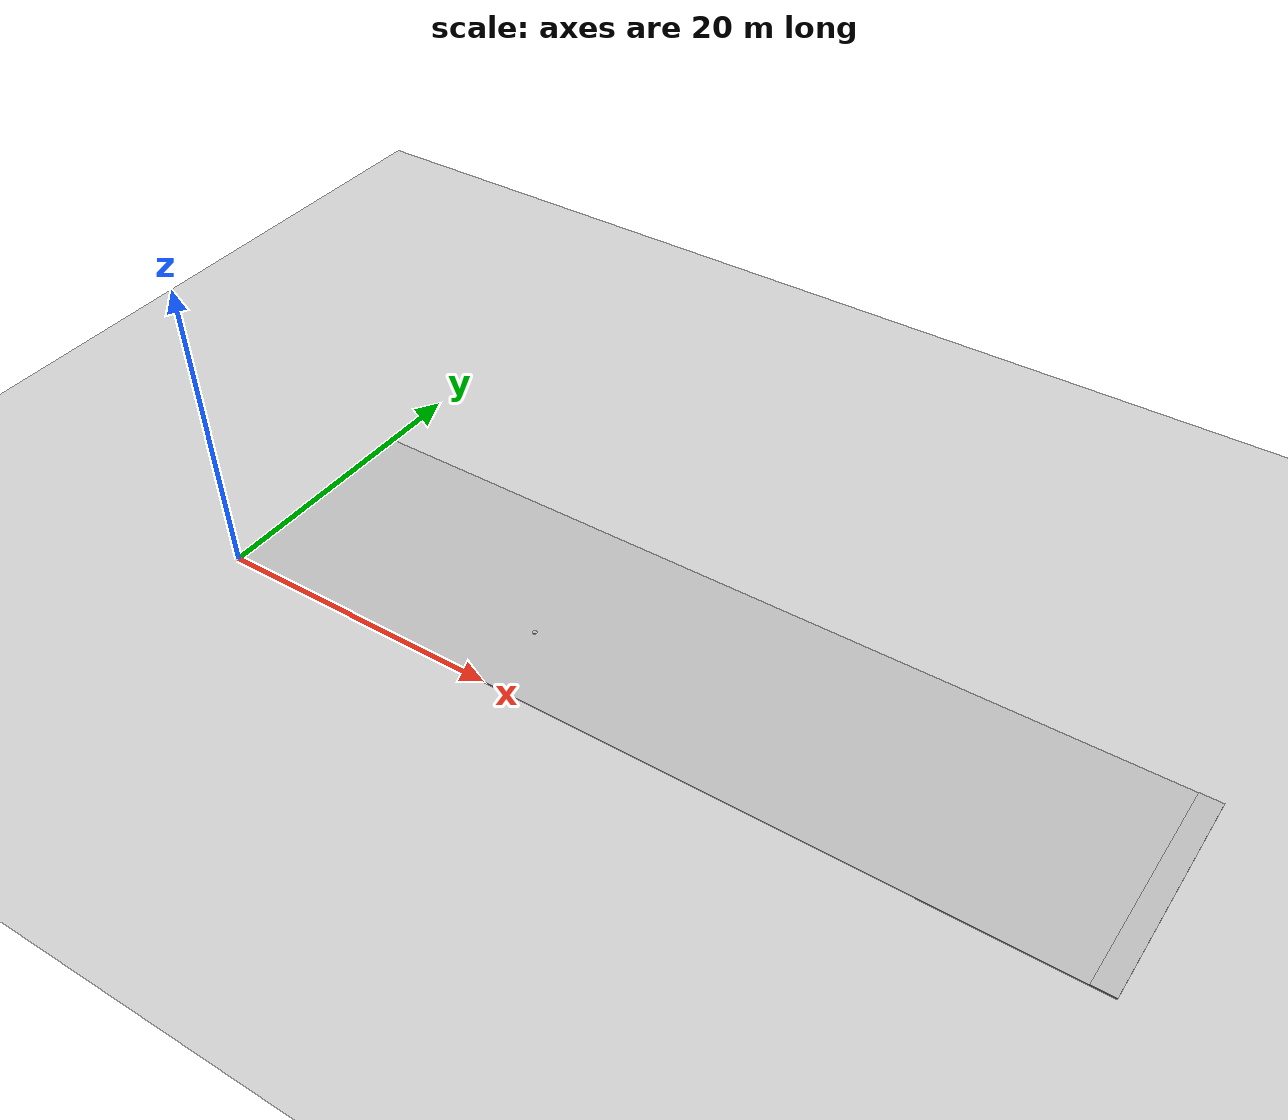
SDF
<?xml version="1.0" ?><sdf version="1.6"><world name="robofest_arena"><gravity>0 0 -9.81</gravity><include><uri>model://ground_plane</uri></include><model name="arena_floor"><static>true</static><link name="link"><collision name="collision"><geometry><box><size>60 15 0.1</size></box></geometry></collision><visual name="visual"><geometry><box><size>60 15 0.1</size></box></geometry></visual></link><pose>30 7.5 -0.05 0 0 0</pose></model><model name="exit_zone"><static>true</static><link name="link"><visual name="visual"><geometry><box><size>1.5 15 0.02</size></box></geometry></visual></link><pose>59.25 7.5 0.02 0 0 0</pose></model><model name="mine_1"><static>true</static><link name="link"><collision name="collision"><geometry><cylinder><radius>0.15</radius><length>0.05</length></cylinder></geometry></collision><visual name="visual"><geometry><cylinder><radius>0.15</radius><length>0.05</length></cylinder></geometry></visual></link><pose>20 5 0.03 0 0 0</pose></model></world></sdf>
